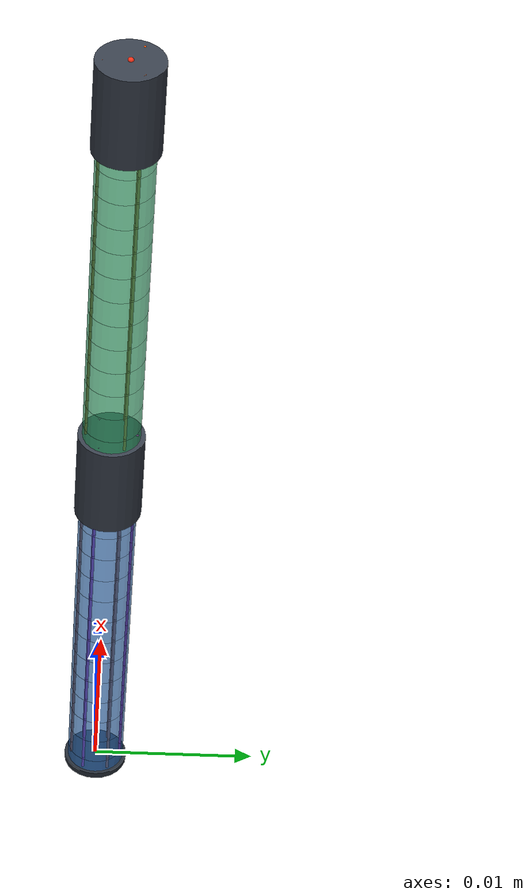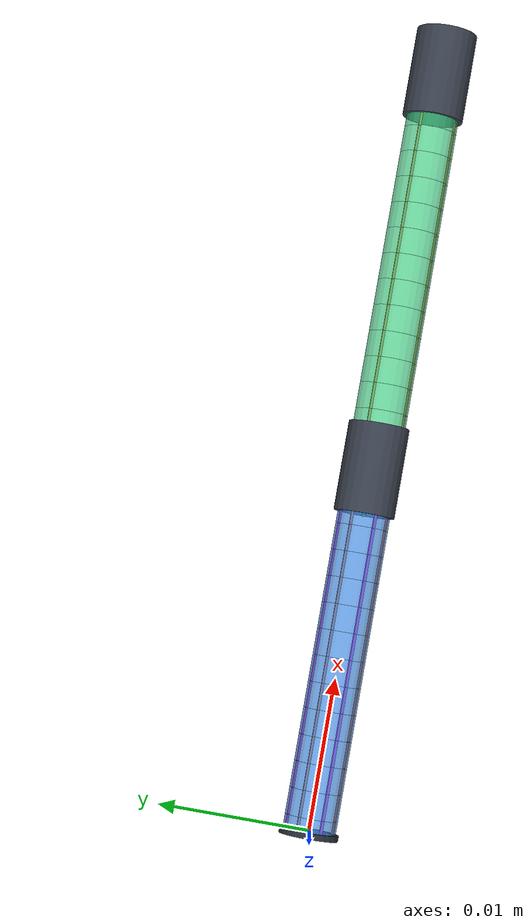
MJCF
<?xml version='1.0' encoding='utf-8'?>
<mujoco model="two_segment_tendon_driven_continuum">
  <compiler angle="radian" autolimits="true" boundmass="1e-12" />
  <option timestep="0.0002" integrator="implicitfast" gravity="0 0 0" cone="pyramidal" impratio="100" iterations="80" tolerance="1e-7" />
  <visual>
    <headlight diffuse="0.8 0.8 0.8" ambient="0.25 0.25 0.25" />
    <global azimuth="130" elevation="-20" />
  </visual>
  <asset>
    <texture type="skybox" builtin="gradient" rgb1="0.9 0.95 1" rgb2="0.25 0.35 0.5" width="256" height="256" />
  </asset>
  <worldbody>
    <light pos="0 0.04 0.08" dir="0 -0.4 -1" diffuse="0.9 0.9 0.9" />
    <body name="tdcr_base" pos="0 0 0">
      <site name="base_frame" pos="0 0 0" size="0.00012" rgba="0 0.8 1 1" />
      <site name="measurement_kp_0" pos="0 0 0" size="0.00022" rgba="1 0.85 0.05 0.9" group="5" />
      <geom name="base_disk" type="cylinder" pos="-0.0002 0 0" euler="0 1.57079632679 0" size="0.00196 0.0002" mass="0" rgba="0.15 0.18 0.22 1" contype="0" conaffinity="0" />
      <site name="wire_1_base" pos="0 0.00154 0" size="7.5e-05" rgba="1.0 0.0 0.9 1" group="3" />
      <site name="wire_2_base" pos="0 -0.00077 0.00133367912183" size="7.5e-05" rgba="1.0 0.0 0.9 1" group="3" />
      <site name="wire_3_base" pos="0 -0.00077 -0.00133367912183" size="7.5e-05" rgba="1.0 0.0 0.9 1" group="3" />
      <site name="wire_4_base" pos="0 0.00077 0.00133367912183" size="7.5e-05" rgba="0.95 0.35 0.05 1" group="3" />
      <site name="wire_5_base" pos="0 -0.00154 1.88595607069e-19" size="7.5e-05" rgba="0.95 0.35 0.05 1" group="3" />
      <site name="wire_6_base" pos="0 0.00077 -0.00133367912183" size="7.5e-05" rgba="0.95 0.35 0.05 1" group="3" />
      <geom name="section_1_element_0" type="cylinder" fromto="0 0 0 0.000875 0 0" size="0.00175" mass="2.43349239569e-05" rgba="0.25 0.55 0.9 0.72" contype="1" conaffinity="0" margin="0.00005" condim="1" friction="0.3 0.001 0.0001" solref="0.005 2" solimp="0.9 0.95 0.001" />
      <body name="section_1_joint_body_0" pos="0.000875 0 0">
        <joint name="section_1_joint_0_y" axis="0 1 0" type="hinge" pos="0 0 0" limited="true" range="-0.35 0.35" stiffness="0.058548571988" damping="0.006" armature="1e-10" />
        <joint name="section_1_joint_0_z" axis="0 0 1" type="hinge" pos="0 0 0" limited="true" range="-0.35 0.35" stiffness="0.058548571988" damping="0.006" armature="1e-10" />
        <geom name="section_1_element_1" type="cylinder" fromto="0 0 0 0.00175 0 0" size="0.00175" mass="4.86698479137e-05" rgba="0.25 0.55 0.9 0.72" contype="1" conaffinity="0" margin="0.00005" condim="1" friction="0.3 0.001 0.0001" solref="0.005 2" solimp="0.9 0.95 0.001" />
        <site name="wire_1_section_1_joint_0" pos="0 0.00154 0" size="7.5e-05" rgba="1.0 0.0 0.9 1" group="3" />
        <site name="wire_2_section_1_joint_0" pos="0 -0.00077 0.00133367912183" size="7.5e-05" rgba="1.0 0.0 0.9 1" group="3" />
        <site name="wire_3_section_1_joint_0" pos="0 -0.00077 -0.00133367912183" size="7.5e-05" rgba="1.0 0.0 0.9 1" group="3" />
        <site name="wire_4_section_1_joint_0" pos="0 0.00077 0.00133367912183" size="7.5e-05" rgba="0.95 0.35 0.05 1" group="3" />
        <site name="wire_5_section_1_joint_0" pos="0 -0.00154 1.88595607069e-19" size="7.5e-05" rgba="0.95 0.35 0.05 1" group="3" />
        <site name="wire_6_section_1_joint_0" pos="0 0.00077 -0.00133367912183" size="7.5e-05" rgba="0.95 0.35 0.05 1" group="3" />
        <body name="section_1_joint_body_1" pos="0.00175 0 0">
          <joint name="section_1_joint_1_y" axis="0 1 0" type="hinge" pos="0 0 0" limited="true" range="-0.35 0.35" stiffness="0.058548571988" damping="0.006" armature="1e-10" />
          <joint name="section_1_joint_1_z" axis="0 0 1" type="hinge" pos="0 0 0" limited="true" range="-0.35 0.35" stiffness="0.058548571988" damping="0.006" armature="1e-10" />
          <geom name="section_1_element_2" type="cylinder" fromto="0 0 0 0.00175 0 0" size="0.00175" mass="4.86698479137e-05" rgba="0.25 0.55 0.9 0.72" contype="1" conaffinity="0" margin="0.00005" condim="1" friction="0.3 0.001 0.0001" solref="0.005 2" solimp="0.9 0.95 0.001" />
          <site name="wire_1_section_1_joint_1" pos="0 0.00154 0" size="7.5e-05" rgba="1.0 0.0 0.9 1" group="3" />
          <site name="wire_2_section_1_joint_1" pos="0 -0.00077 0.00133367912183" size="7.5e-05" rgba="1.0 0.0 0.9 1" group="3" />
          <site name="wire_3_section_1_joint_1" pos="0 -0.00077 -0.00133367912183" size="7.5e-05" rgba="1.0 0.0 0.9 1" group="3" />
          <site name="wire_4_section_1_joint_1" pos="0 0.00077 0.00133367912183" size="7.5e-05" rgba="0.95 0.35 0.05 1" group="3" />
          <site name="wire_5_section_1_joint_1" pos="0 -0.00154 1.88595607069e-19" size="7.5e-05" rgba="0.95 0.35 0.05 1" group="3" />
          <site name="wire_6_section_1_joint_1" pos="0 0.00077 -0.00133367912183" size="7.5e-05" rgba="0.95 0.35 0.05 1" group="3" />
          <body name="section_1_joint_body_2" pos="0.00175 0 0">
            <joint name="section_1_joint_2_y" axis="0 1 0" type="hinge" pos="0 0 0" limited="true" range="-0.35 0.35" stiffness="0.058548571988" damping="0.006" armature="1e-10" />
            <joint name="section_1_joint_2_z" axis="0 0 1" type="hinge" pos="0 0 0" limited="true" range="-0.35 0.35" stiffness="0.058548571988" damping="0.006" armature="1e-10" />
            <geom name="section_1_element_3" type="cylinder" fromto="0 0 0 0.00175 0 0" size="0.00175" mass="4.86698479137e-05" rgba="0.25 0.55 0.9 0.72" contype="1" conaffinity="0" margin="0.00005" condim="1" friction="0.3 0.001 0.0001" solref="0.005 2" solimp="0.9 0.95 0.001" />
            <site name="wire_1_section_1_joint_2" pos="0 0.00154 0" size="7.5e-05" rgba="1.0 0.0 0.9 1" group="3" />
            <site name="wire_2_section_1_joint_2" pos="0 -0.00077 0.00133367912183" size="7.5e-05" rgba="1.0 0.0 0.9 1" group="3" />
            <site name="wire_3_section_1_joint_2" pos="0 -0.00077 -0.00133367912183" size="7.5e-05" rgba="1.0 0.0 0.9 1" group="3" />
            <site name="wire_4_section_1_joint_2" pos="0 0.00077 0.00133367912183" size="7.5e-05" rgba="0.95 0.35 0.05 1" group="3" />
            <site name="wire_5_section_1_joint_2" pos="0 -0.00154 1.88595607069e-19" size="7.5e-05" rgba="0.95 0.35 0.05 1" group="3" />
            <site name="wire_6_section_1_joint_2" pos="0 0.00077 -0.00133367912183" size="7.5e-05" rgba="0.95 0.35 0.05 1" group="3" />
            <body name="section_1_joint_body_3" pos="0.00175 0 0">
              <joint name="section_1_joint_3_y" axis="0 1 0" type="hinge" pos="0 0 0" limited="true" range="-0.35 0.35" stiffness="0.058548571988" damping="0.006" armature="1e-10" />
              <joint name="section_1_joint_3_z" axis="0 0 1" type="hinge" pos="0 0 0" limited="true" range="-0.35 0.35" stiffness="0.058548571988" damping="0.006" armature="1e-10" />
              <geom name="section_1_element_4" type="cylinder" fromto="0 0 0 0.00175 0 0" size="0.00175" mass="4.86698479137e-05" rgba="0.25 0.55 0.9 0.72" contype="1" conaffinity="0" margin="0.00005" condim="1" friction="0.3 0.001 0.0001" solref="0.005 2" solimp="0.9 0.95 0.001" />
              <site name="wire_1_section_1_joint_3" pos="0 0.00154 0" size="7.5e-05" rgba="1.0 0.0 0.9 1" group="3" />
              <site name="wire_2_section_1_joint_3" pos="0 -0.00077 0.00133367912183" size="7.5e-05" rgba="1.0 0.0 0.9 1" group="3" />
              <site name="wire_3_section_1_joint_3" pos="0 -0.00077 -0.00133367912183" size="7.5e-05" rgba="1.0 0.0 0.9 1" group="3" />
              <site name="wire_4_section_1_joint_3" pos="0 0.00077 0.00133367912183" size="7.5e-05" rgba="0.95 0.35 0.05 1" group="3" />
              <site name="wire_5_section_1_joint_3" pos="0 -0.00154 1.88595607069e-19" size="7.5e-05" rgba="0.95 0.35 0.05 1" group="3" />
              <site name="wire_6_section_1_joint_3" pos="0 0.00077 -0.00133367912183" size="7.5e-05" rgba="0.95 0.35 0.05 1" group="3" />
              <body name="section_1_joint_body_4" pos="0.00175 0 0">
                <joint name="section_1_joint_4_y" axis="0 1 0" type="hinge" pos="0 0 0" limited="true" range="-0.35 0.35" stiffness="0.058548571988" damping="0.006" armature="1e-10" />
                <joint name="section_1_joint_4_z" axis="0 0 1" type="hinge" pos="0 0 0" limited="true" range="-0.35 0.35" stiffness="0.058548571988" damping="0.006" armature="1e-10" />
                <geom name="section_1_element_5" type="cylinder" fromto="0 0 0 0.00175 0 0" size="0.00175" mass="4.86698479137e-05" rgba="0.25 0.55 0.9 0.72" contype="1" conaffinity="0" margin="0.00005" condim="1" friction="0.3 0.001 0.0001" solref="0.005 2" solimp="0.9 0.95 0.001" />
                <site name="wire_1_section_1_joint_4" pos="0 0.00154 0" size="7.5e-05" rgba="1.0 0.0 0.9 1" group="3" />
                <site name="wire_2_section_1_joint_4" pos="0 -0.00077 0.00133367912183" size="7.5e-05" rgba="1.0 0.0 0.9 1" group="3" />
                <site name="wire_3_section_1_joint_4" pos="0 -0.00077 -0.00133367912183" size="7.5e-05" rgba="1.0 0.0 0.9 1" group="3" />
                <site name="wire_4_section_1_joint_4" pos="0 0.00077 0.00133367912183" size="7.5e-05" rgba="0.95 0.35 0.05 1" group="3" />
                <site name="wire_5_section_1_joint_4" pos="0 -0.00154 1.88595607069e-19" size="7.5e-05" rgba="0.95 0.35 0.05 1" group="3" />
                <site name="wire_6_section_1_joint_4" pos="0 0.00077 -0.00133367912183" size="7.5e-05" rgba="0.95 0.35 0.05 1" group="3" />
                <body name="section_1_joint_body_5" pos="0.00175 0 0">
                  <joint name="section_1_joint_5_y" axis="0 1 0" type="hinge" pos="0 0 0" limited="true" range="-0.35 0.35" stiffness="0.058548571988" damping="0.006" armature="1e-10" />
                  <joint name="section_1_joint_5_z" axis="0 0 1" type="hinge" pos="0 0 0" limited="true" range="-0.35 0.35" stiffness="0.058548571988" damping="0.006" armature="1e-10" />
                  <geom name="section_1_element_6" type="cylinder" fromto="0 0 0 0.00175 0 0" size="0.00175" mass="4.86698479137e-05" rgba="0.25 0.55 0.9 0.72" contype="1" conaffinity="0" margin="0.00005" condim="1" friction="0.3 0.001 0.0001" solref="0.005 2" solimp="0.9 0.95 0.001" />
                  <site name="wire_1_section_1_joint_5" pos="0 0.00154 0" size="7.5e-05" rgba="1.0 0.0 0.9 1" group="3" />
                  <site name="wire_2_section_1_joint_5" pos="0 -0.00077 0.00133367912183" size="7.5e-05" rgba="1.0 0.0 0.9 1" group="3" />
                  <site name="wire_3_section_1_joint_5" pos="0 -0.00077 -0.00133367912183" size="7.5e-05" rgba="1.0 0.0 0.9 1" group="3" />
                  <site name="wire_4_section_1_joint_5" pos="0 0.00077 0.00133367912183" size="7.5e-05" rgba="0.95 0.35 0.05 1" group="3" />
                  <site name="wire_5_section_1_joint_5" pos="0 -0.00154 1.88595607069e-19" size="7.5e-05" rgba="0.95 0.35 0.05 1" group="3" />
                  <site name="wire_6_section_1_joint_5" pos="0 0.00077 -0.00133367912183" size="7.5e-05" rgba="0.95 0.35 0.05 1" group="3" />
                  <body name="section_1_joint_body_6" pos="0.00175 0 0">
                    <joint name="section_1_joint_6_y" axis="0 1 0" type="hinge" pos="0 0 0" limited="true" range="-0.35 0.35" stiffness="0.058548571988" damping="0.006" armature="1e-10" />
                    <joint name="section_1_joint_6_z" axis="0 0 1" type="hinge" pos="0 0 0" limited="true" range="-0.35 0.35" stiffness="0.058548571988" damping="0.006" armature="1e-10" />
                    <geom name="section_1_element_7" type="cylinder" fromto="0 0 0 0.00175 0 0" size="0.00175" mass="4.86698479137e-05" rgba="0.25 0.55 0.9 0.72" contype="1" conaffinity="0" margin="0.00005" condim="1" friction="0.3 0.001 0.0001" solref="0.005 2" solimp="0.9 0.95 0.001" />
                    <site name="wire_1_section_1_joint_6" pos="0 0.00154 0" size="7.5e-05" rgba="1.0 0.0 0.9 1" group="3" />
                    <site name="wire_2_section_1_joint_6" pos="0 -0.00077 0.00133367912183" size="7.5e-05" rgba="1.0 0.0 0.9 1" group="3" />
                    <site name="wire_3_section_1_joint_6" pos="0 -0.00077 -0.00133367912183" size="7.5e-05" rgba="1.0 0.0 0.9 1" group="3" />
                    <site name="wire_4_section_1_joint_6" pos="0 0.00077 0.00133367912183" size="7.5e-05" rgba="0.95 0.35 0.05 1" group="3" />
                    <site name="wire_5_section_1_joint_6" pos="0 -0.00154 1.88595607069e-19" size="7.5e-05" rgba="0.95 0.35 0.05 1" group="3" />
                    <site name="wire_6_section_1_joint_6" pos="0 0.00077 -0.00133367912183" size="7.5e-05" rgba="0.95 0.35 0.05 1" group="3" />
                    <body name="section_1_joint_body_7" pos="0.00175 0 0">
                      <joint name="section_1_joint_7_y" axis="0 1 0" type="hinge" pos="0 0 0" limited="true" range="-0.35 0.35" stiffness="0.058548571988" damping="0.006" armature="1e-10" />
                      <joint name="section_1_joint_7_z" axis="0 0 1" type="hinge" pos="0 0 0" limited="true" range="-0.35 0.35" stiffness="0.058548571988" damping="0.006" armature="1e-10" />
                      <geom name="section_1_element_8" type="cylinder" fromto="0 0 0 0.00175 0 0" size="0.00175" mass="4.86698479137e-05" rgba="0.25 0.55 0.9 0.72" contype="1" conaffinity="0" margin="0.00005" condim="1" friction="0.3 0.001 0.0001" solref="0.005 2" solimp="0.9 0.95 0.001" />
                      <site name="wire_1_section_1_joint_7" pos="0 0.00154 0" size="7.5e-05" rgba="1.0 0.0 0.9 1" group="3" />
                      <site name="wire_2_section_1_joint_7" pos="0 -0.00077 0.00133367912183" size="7.5e-05" rgba="1.0 0.0 0.9 1" group="3" />
                      <site name="wire_3_section_1_joint_7" pos="0 -0.00077 -0.00133367912183" size="7.5e-05" rgba="1.0 0.0 0.9 1" group="3" />
                      <site name="wire_4_section_1_joint_7" pos="0 0.00077 0.00133367912183" size="7.5e-05" rgba="0.95 0.35 0.05 1" group="3" />
                      <site name="wire_5_section_1_joint_7" pos="0 -0.00154 1.88595607069e-19" size="7.5e-05" rgba="0.95 0.35 0.05 1" group="3" />
                      <site name="wire_6_section_1_joint_7" pos="0 0.00077 -0.00133367912183" size="7.5e-05" rgba="0.95 0.35 0.05 1" group="3" />
                      <body name="section_1_joint_body_8" pos="0.00175 0 0">
                        <joint name="section_1_joint_8_y" axis="0 1 0" type="hinge" pos="0 0 0" limited="true" range="-0.35 0.35" stiffness="0.058548571988" damping="0.006" armature="1e-10" />
                        <joint name="section_1_joint_8_z" axis="0 0 1" type="hinge" pos="0 0 0" limited="true" range="-0.35 0.35" stiffness="0.058548571988" damping="0.006" armature="1e-10" />
                        <geom name="section_1_element_9" type="cylinder" fromto="0 0 0 0.00175 0 0" size="0.00175" mass="4.86698479137e-05" rgba="0.25 0.55 0.9 0.72" contype="1" conaffinity="0" margin="0.00005" condim="1" friction="0.3 0.001 0.0001" solref="0.005 2" solimp="0.9 0.95 0.001" />
                        <site name="wire_1_section_1_joint_8" pos="0 0.00154 0" size="7.5e-05" rgba="1.0 0.0 0.9 1" group="3" />
                        <site name="wire_2_section_1_joint_8" pos="0 -0.00077 0.00133367912183" size="7.5e-05" rgba="1.0 0.0 0.9 1" group="3" />
                        <site name="wire_3_section_1_joint_8" pos="0 -0.00077 -0.00133367912183" size="7.5e-05" rgba="1.0 0.0 0.9 1" group="3" />
                        <site name="wire_4_section_1_joint_8" pos="0 0.00077 0.00133367912183" size="7.5e-05" rgba="0.95 0.35 0.05 1" group="3" />
                        <site name="wire_5_section_1_joint_8" pos="0 -0.00154 1.88595607069e-19" size="7.5e-05" rgba="0.95 0.35 0.05 1" group="3" />
                        <site name="wire_6_section_1_joint_8" pos="0 0.00077 -0.00133367912183" size="7.5e-05" rgba="0.95 0.35 0.05 1" group="3" />
                        <body name="section_1_joint_body_9" pos="0.00175 0 0">
                          <joint name="section_1_joint_9_y" axis="0 1 0" type="hinge" pos="0 0 0" limited="true" range="-0.35 0.35" stiffness="0.058548571988" damping="0.006" armature="1e-10" />
                          <joint name="section_1_joint_9_z" axis="0 0 1" type="hinge" pos="0 0 0" limited="true" range="-0.35 0.35" stiffness="0.058548571988" damping="0.006" armature="1e-10" />
                          <geom name="section_1_element_10" type="cylinder" fromto="0 0 0 0.00175 0 0" size="0.00175" mass="4.86698479137e-05" rgba="0.25 0.55 0.9 0.72" contype="1" conaffinity="0" margin="0.00005" condim="1" friction="0.3 0.001 0.0001" solref="0.005 2" solimp="0.9 0.95 0.001" />
                          <site name="wire_1_section_1_joint_9" pos="0 0.00154 0" size="7.5e-05" rgba="1.0 0.0 0.9 1" group="3" />
                          <site name="wire_2_section_1_joint_9" pos="0 -0.00077 0.00133367912183" size="7.5e-05" rgba="1.0 0.0 0.9 1" group="3" />
                          <site name="wire_3_section_1_joint_9" pos="0 -0.00077 -0.00133367912183" size="7.5e-05" rgba="1.0 0.0 0.9 1" group="3" />
                          <site name="wire_4_section_1_joint_9" pos="0 0.00077 0.00133367912183" size="7.5e-05" rgba="0.95 0.35 0.05 1" group="3" />
                          <site name="wire_5_section_1_joint_9" pos="0 -0.00154 1.88595607069e-19" size="7.5e-05" rgba="0.95 0.35 0.05 1" group="3" />
                          <site name="wire_6_section_1_joint_9" pos="0 0.00077 -0.00133367912183" size="7.5e-05" rgba="0.95 0.35 0.05 1" group="3" />
                          <body name="section_1_joint_body_10" pos="0.00175 0 0">
                            <joint name="section_1_joint_10_y" axis="0 1 0" type="hinge" pos="0 0 0" limited="true" range="-0.35 0.35" stiffness="0.058548571988" damping="0.006" armature="1e-10" />
                            <joint name="section_1_joint_10_z" axis="0 0 1" type="hinge" pos="0 0 0" limited="true" range="-0.35 0.35" stiffness="0.058548571988" damping="0.006" armature="1e-10" />
                            <geom name="section_1_element_11" type="cylinder" fromto="0 0 0 0.00175 0 0" size="0.00175" mass="4.86698479137e-05" rgba="0.25 0.55 0.9 0.72" contype="1" conaffinity="0" margin="0.00005" condim="1" friction="0.3 0.001 0.0001" solref="0.005 2" solimp="0.9 0.95 0.001" />
                            <site name="wire_1_section_1_joint_10" pos="0 0.00154 0" size="7.5e-05" rgba="1.0 0.0 0.9 1" group="3" />
                            <site name="wire_2_section_1_joint_10" pos="0 -0.00077 0.00133367912183" size="7.5e-05" rgba="1.0 0.0 0.9 1" group="3" />
                            <site name="wire_3_section_1_joint_10" pos="0 -0.00077 -0.00133367912183" size="7.5e-05" rgba="1.0 0.0 0.9 1" group="3" />
                            <site name="wire_4_section_1_joint_10" pos="0 0.00077 0.00133367912183" size="7.5e-05" rgba="0.95 0.35 0.05 1" group="3" />
                            <site name="wire_5_section_1_joint_10" pos="0 -0.00154 1.88595607069e-19" size="7.5e-05" rgba="0.95 0.35 0.05 1" group="3" />
                            <site name="wire_6_section_1_joint_10" pos="0 0.00077 -0.00133367912183" size="7.5e-05" rgba="0.95 0.35 0.05 1" group="3" />
                            <body name="section_1_joint_body_11" pos="0.00175 0 0">
                              <joint name="section_1_joint_11_y" axis="0 1 0" type="hinge" pos="0 0 0" limited="true" range="-0.35 0.35" stiffness="0.058548571988" damping="0.006" armature="1e-10" />
                              <joint name="section_1_joint_11_z" axis="0 0 1" type="hinge" pos="0 0 0" limited="true" range="-0.35 0.35" stiffness="0.058548571988" damping="0.006" armature="1e-10" />
                              <geom name="section_1_element_12" type="cylinder" fromto="0 0 0 0.000875 0 0" size="0.00175" mass="2.43349239569e-05" rgba="0.25 0.55 0.9 0.72" contype="1" conaffinity="0" margin="0.00005" condim="1" friction="0.3 0.001 0.0001" solref="0.005 2" solimp="0.9 0.95 0.001" />
                              <site name="wire_1_section_1_joint_11" pos="0 0.00154 0" size="7.5e-05" rgba="1.0 0.0 0.9 1" group="3" />
                              <site name="wire_2_section_1_joint_11" pos="0 -0.00077 0.00133367912183" size="7.5e-05" rgba="1.0 0.0 0.9 1" group="3" />
                              <site name="wire_3_section_1_joint_11" pos="0 -0.00077 -0.00133367912183" size="7.5e-05" rgba="1.0 0.0 0.9 1" group="3" />
                              <site name="wire_4_section_1_joint_11" pos="0 0.00077 0.00133367912183" size="7.5e-05" rgba="0.95 0.35 0.05 1" group="3" />
                              <site name="wire_5_section_1_joint_11" pos="0 -0.00154 1.88595607069e-19" size="7.5e-05" rgba="0.95 0.35 0.05 1" group="3" />
                              <site name="wire_6_section_1_joint_11" pos="0 0.00077 -0.00133367912183" size="7.5e-05" rgba="0.95 0.35 0.05 1" group="3" />
                              <body name="section_interface" pos="0.000875 0 0">
                                <site name="interface_center" pos="0 0 0" size="0.00015" rgba="0 1 0 1" />
                                <site name="measurement_kp_3" pos="0 0 0" size="0.00022" rgba="1 0.85 0.05 0.9" group="5" />
                                <geom name="inter_section_rigid" type="cylinder" fromto="0 0 0 0.006 0 0" size="0.00203" mass="0" rgba="0.22 0.25 0.30 1" contype="0" conaffinity="0" />
                                <geom name="inter_section_rigid_collision" type="capsule" fromto="0 0 0 0.006 0 0" size="0.00175" mass="0" rgba="0.22 0.25 0.30 0" contype="1" conaffinity="0" margin="0.00005" condim="1" friction="0.3 0.001 0.0001" solref="0.005 2" solimp="0.9 0.95 0.001" group="5" />
                                <site name="wire_1_interface_inlet" pos="0 0.00154 0" size="7.5e-05" rgba="1.0 0.0 0.9 1" group="3" />
                                <site name="wire_2_interface_inlet" pos="0 -0.00077 0.00133367912183" size="7.5e-05" rgba="1.0 0.0 0.9 1" group="3" />
                                <site name="wire_3_interface_inlet" pos="0 -0.00077 -0.00133367912183" size="7.5e-05" rgba="1.0 0.0 0.9 1" group="3" />
                                <site name="wire_4_interface_inlet" pos="0 0.00077 0.00133367912183" size="7.5e-05" rgba="0.95 0.35 0.05 1" group="3" />
                                <site name="wire_5_interface_inlet" pos="0 -0.00154 1.88595607069e-19" size="7.5e-05" rgba="0.95 0.35 0.05 1" group="3" />
                                <site name="wire_6_interface_inlet" pos="0 0.00077 -0.00133367912183" size="7.5e-05" rgba="0.95 0.35 0.05 1" group="3" />
                                <site name="wire_1_interface" pos="0.006 0.00154 0" size="7.5e-05" rgba="1.0 0.0 0.9 1" group="3" />
                                <site name="wire_2_interface" pos="0.006 -0.00077 0.00133367912183" size="7.5e-05" rgba="1.0 0.0 0.9 1" group="3" />
                                <site name="wire_3_interface" pos="0.006 -0.00077 -0.00133367912183" size="7.5e-05" rgba="1.0 0.0 0.9 1" group="3" />
                                <site name="wire_4_interface" pos="0.006 0.00077 0.00133367912183" size="7.5e-05" rgba="0.95 0.35 0.05 1" group="3" />
                                <site name="wire_5_interface" pos="0.006 -0.00154 1.88595607069e-19" size="7.5e-05" rgba="0.95 0.35 0.05 1" group="3" />
                                <site name="wire_6_interface" pos="0.006 0.00077 -0.00133367912183" size="7.5e-05" rgba="0.95 0.35 0.05 1" group="3" />
                                <body name="section_2_mount" pos="0.006 0 0">
                                  <geom name="section_2_element_0" type="cylinder" fromto="0 0 0 0.000875 0 0" size="0.00175" mass="2.43349239569e-05" rgba="0.25 0.82 0.52 0.72" contype="1" conaffinity="0" margin="0.00005" condim="1" friction="0.3 0.001 0.0001" solref="0.005 2" solimp="0.9 0.95 0.001" />
                                  <body name="section_2_joint_body_0" pos="0.000875 0 0">
                                    <joint name="section_2_joint_0_y" axis="0 1 0" type="hinge" pos="0 0 0" limited="true" range="-0.35 0.35" stiffness="0.058548571988" damping="0.006" armature="1e-10" />
                                    <joint name="section_2_joint_0_z" axis="0 0 1" type="hinge" pos="0 0 0" limited="true" range="-0.35 0.35" stiffness="0.058548571988" damping="0.006" armature="1e-10" />
                                    <geom name="section_2_element_1" type="cylinder" fromto="0 0 0 0.00175 0 0" size="0.00175" mass="4.86698479137e-05" rgba="0.25 0.82 0.52 0.72" contype="1" conaffinity="0" margin="0.00005" condim="1" friction="0.3 0.001 0.0001" solref="0.005 2" solimp="0.9 0.95 0.001" />
                                    <site name="wire_4_section_2_joint_0" pos="0 0.00077 0.00133367912183" size="7.5e-05" rgba="0.95 0.35 0.05 1" group="3" />
                                    <site name="wire_5_section_2_joint_0" pos="0 -0.00154 1.88595607069e-19" size="7.5e-05" rgba="0.95 0.35 0.05 1" group="3" />
                                    <site name="wire_6_section_2_joint_0" pos="0 0.00077 -0.00133367912183" size="7.5e-05" rgba="0.95 0.35 0.05 1" group="3" />
                                    <body name="section_2_joint_body_1" pos="0.00175 0 0">
                                      <joint name="section_2_joint_1_y" axis="0 1 0" type="hinge" pos="0 0 0" limited="true" range="-0.35 0.35" stiffness="0.058548571988" damping="0.006" armature="1e-10" />
                                      <joint name="section_2_joint_1_z" axis="0 0 1" type="hinge" pos="0 0 0" limited="true" range="-0.35 0.35" stiffness="0.058548571988" damping="0.006" armature="1e-10" />
                                      <geom name="section_2_element_2" type="cylinder" fromto="0 0 0 0.00175 0 0" size="0.00175" mass="4.86698479137e-05" rgba="0.25 0.82 0.52 0.72" contype="1" conaffinity="0" margin="0.00005" condim="1" friction="0.3 0.001 0.0001" solref="0.005 2" solimp="0.9 0.95 0.001" />
                                      <site name="wire_4_section_2_joint_1" pos="0 0.00077 0.00133367912183" size="7.5e-05" rgba="0.95 0.35 0.05 1" group="3" />
                                      <site name="wire_5_section_2_joint_1" pos="0 -0.00154 1.88595607069e-19" size="7.5e-05" rgba="0.95 0.35 0.05 1" group="3" />
                                      <site name="wire_6_section_2_joint_1" pos="0 0.00077 -0.00133367912183" size="7.5e-05" rgba="0.95 0.35 0.05 1" group="3" />
                                      <body name="section_2_joint_body_2" pos="0.00175 0 0">
                                        <joint name="section_2_joint_2_y" axis="0 1 0" type="hinge" pos="0 0 0" limited="true" range="-0.35 0.35" stiffness="0.058548571988" damping="0.006" armature="1e-10" />
                                        <joint name="section_2_joint_2_z" axis="0 0 1" type="hinge" pos="0 0 0" limited="true" range="-0.35 0.35" stiffness="0.058548571988" damping="0.006" armature="1e-10" />
                                        <geom name="section_2_element_3" type="cylinder" fromto="0 0 0 0.00175 0 0" size="0.00175" mass="4.86698479137e-05" rgba="0.25 0.82 0.52 0.72" contype="1" conaffinity="0" margin="0.00005" condim="1" friction="0.3 0.001 0.0001" solref="0.005 2" solimp="0.9 0.95 0.001" />
                                        <site name="wire_4_section_2_joint_2" pos="0 0.00077 0.00133367912183" size="7.5e-05" rgba="0.95 0.35 0.05 1" group="3" />
                                        <site name="wire_5_section_2_joint_2" pos="0 -0.00154 1.88595607069e-19" size="7.5e-05" rgba="0.95 0.35 0.05 1" group="3" />
                                        <site name="wire_6_section_2_joint_2" pos="0 0.00077 -0.00133367912183" size="7.5e-05" rgba="0.95 0.35 0.05 1" group="3" />
                                        <body name="section_2_joint_body_3" pos="0.00175 0 0">
                                          <joint name="section_2_joint_3_y" axis="0 1 0" type="hinge" pos="0 0 0" limited="true" range="-0.35 0.35" stiffness="0.058548571988" damping="0.006" armature="1e-10" />
                                          <joint name="section_2_joint_3_z" axis="0 0 1" type="hinge" pos="0 0 0" limited="true" range="-0.35 0.35" stiffness="0.058548571988" damping="0.006" armature="1e-10" />
                                          <geom name="section_2_element_4" type="cylinder" fromto="0 0 0 0.00175 0 0" size="0.00175" mass="4.86698479137e-05" rgba="0.25 0.82 0.52 0.72" contype="1" conaffinity="0" margin="0.00005" condim="1" friction="0.3 0.001 0.0001" solref="0.005 2" solimp="0.9 0.95 0.001" />
                                          <site name="wire_4_section_2_joint_3" pos="0 0.00077 0.00133367912183" size="7.5e-05" rgba="0.95 0.35 0.05 1" group="3" />
                                          <site name="wire_5_section_2_joint_3" pos="0 -0.00154 1.88595607069e-19" size="7.5e-05" rgba="0.95 0.35 0.05 1" group="3" />
                                          <site name="wire_6_section_2_joint_3" pos="0 0.00077 -0.00133367912183" size="7.5e-05" rgba="0.95 0.35 0.05 1" group="3" />
                                          <body name="section_2_joint_body_4" pos="0.00175 0 0">
                                            <joint name="section_2_joint_4_y" axis="0 1 0" type="hinge" pos="0 0 0" limited="true" range="-0.35 0.35" stiffness="0.058548571988" damping="0.006" armature="1e-10" />
                                            <joint name="section_2_joint_4_z" axis="0 0 1" type="hinge" pos="0 0 0" limited="true" range="-0.35 0.35" stiffness="0.058548571988" damping="0.006" armature="1e-10" />
                                            <geom name="section_2_element_5" type="cylinder" fromto="0 0 0 0.00175 0 0" size="0.00175" mass="4.86698479137e-05" rgba="0.25 0.82 0.52 0.72" contype="1" conaffinity="0" margin="0.00005" condim="1" friction="0.3 0.001 0.0001" solref="0.005 2" solimp="0.9 0.95 0.001" />
                                            <site name="wire_4_section_2_joint_4" pos="0 0.00077 0.00133367912183" size="7.5e-05" rgba="0.95 0.35 0.05 1" group="3" />
                                            <site name="wire_5_section_2_joint_4" pos="0 -0.00154 1.88595607069e-19" size="7.5e-05" rgba="0.95 0.35 0.05 1" group="3" />
                                            <site name="wire_6_section_2_joint_4" pos="0 0.00077 -0.00133367912183" size="7.5e-05" rgba="0.95 0.35 0.05 1" group="3" />
                                            <body name="section_2_joint_body_5" pos="0.00175 0 0">
                                              <joint name="section_2_joint_5_y" axis="0 1 0" type="hinge" pos="0 0 0" limited="true" range="-0.35 0.35" stiffness="0.058548571988" damping="0.006" armature="1e-10" />
                                              <joint name="section_2_joint_5_z" axis="0 0 1" type="hinge" pos="0 0 0" limited="true" range="-0.35 0.35" stiffness="0.058548571988" damping="0.006" armature="1e-10" />
                                              <geom name="section_2_element_6" type="cylinder" fromto="0 0 0 0.00175 0 0" size="0.00175" mass="4.86698479137e-05" rgba="0.25 0.82 0.52 0.72" contype="1" conaffinity="0" margin="0.00005" condim="1" friction="0.3 0.001 0.0001" solref="0.005 2" solimp="0.9 0.95 0.001" />
                                              <site name="wire_4_section_2_joint_5" pos="0 0.00077 0.00133367912183" size="7.5e-05" rgba="0.95 0.35 0.05 1" group="3" />
                                              <site name="wire_5_section_2_joint_5" pos="0 -0.00154 1.88595607069e-19" size="7.5e-05" rgba="0.95 0.35 0.05 1" group="3" />
                                              <site name="wire_6_section_2_joint_5" pos="0 0.00077 -0.00133367912183" size="7.5e-05" rgba="0.95 0.35 0.05 1" group="3" />
                                              <body name="section_2_joint_body_6" pos="0.00175 0 0">
                                                <joint name="section_2_joint_6_y" axis="0 1 0" type="hinge" pos="0 0 0" limited="true" range="-0.35 0.35" stiffness="0.058548571988" damping="0.006" armature="1e-10" />
                                                <joint name="section_2_joint_6_z" axis="0 0 1" type="hinge" pos="0 0 0" limited="true" range="-0.35 0.35" stiffness="0.058548571988" damping="0.006" armature="1e-10" />
                                                <geom name="section_2_element_7" type="cylinder" fromto="0 0 0 0.00175 0 0" size="0.00175" mass="4.86698479137e-05" rgba="0.25 0.82 0.52 0.72" contype="1" conaffinity="0" margin="0.00005" condim="1" friction="0.3 0.001 0.0001" solref="0.005 2" solimp="0.9 0.95 0.001" />
                                                <site name="wire_4_section_2_joint_6" pos="0 0.00077 0.00133367912183" size="7.5e-05" rgba="0.95 0.35 0.05 1" group="3" />
                                                <site name="wire_5_section_2_joint_6" pos="0 -0.00154 1.88595607069e-19" size="7.5e-05" rgba="0.95 0.35 0.05 1" group="3" />
                                                <site name="wire_6_section_2_joint_6" pos="0 0.00077 -0.00133367912183" size="7.5e-05" rgba="0.95 0.35 0.05 1" group="3" />
                                                <body name="section_2_joint_body_7" pos="0.00175 0 0">
                                                  <joint name="section_2_joint_7_y" axis="0 1 0" type="hinge" pos="0 0 0" limited="true" range="-0.35 0.35" stiffness="0.058548571988" damping="0.006" armature="1e-10" />
                                                  <joint name="section_2_joint_7_z" axis="0 0 1" type="hinge" pos="0 0 0" limited="true" range="-0.35 0.35" stiffness="0.058548571988" damping="0.006" armature="1e-10" />
                                                  <geom name="section_2_element_8" type="cylinder" fromto="0 0 0 0.00175 0 0" size="0.00175" mass="4.86698479137e-05" rgba="0.25 0.82 0.52 0.72" contype="1" conaffinity="0" margin="0.00005" condim="1" friction="0.3 0.001 0.0001" solref="0.005 2" solimp="0.9 0.95 0.001" />
                                                  <site name="wire_4_section_2_joint_7" pos="0 0.00077 0.00133367912183" size="7.5e-05" rgba="0.95 0.35 0.05 1" group="3" />
                                                  <site name="wire_5_section_2_joint_7" pos="0 -0.00154 1.88595607069e-19" size="7.5e-05" rgba="0.95 0.35 0.05 1" group="3" />
                                                  <site name="wire_6_section_2_joint_7" pos="0 0.00077 -0.00133367912183" size="7.5e-05" rgba="0.95 0.35 0.05 1" group="3" />
                                                  <body name="section_2_joint_body_8" pos="0.00175 0 0">
                                                    <joint name="section_2_joint_8_y" axis="0 1 0" type="hinge" pos="0 0 0" limited="true" range="-0.35 0.35" stiffness="0.058548571988" damping="0.006" armature="1e-10" />
                                                    <joint name="section_2_joint_8_z" axis="0 0 1" type="hinge" pos="0 0 0" limited="true" range="-0.35 0.35" stiffness="0.058548571988" damping="0.006" armature="1e-10" />
                                                    <geom name="section_2_element_9" type="cylinder" fromto="0 0 0 0.00175 0 0" size="0.00175" mass="4.86698479137e-05" rgba="0.25 0.82 0.52 0.72" contype="1" conaffinity="0" margin="0.00005" condim="1" friction="0.3 0.001 0.0001" solref="0.005 2" solimp="0.9 0.95 0.001" />
                                                    <site name="wire_4_section_2_joint_8" pos="0 0.00077 0.00133367912183" size="7.5e-05" rgba="0.95 0.35 0.05 1" group="3" />
                                                    <site name="wire_5_section_2_joint_8" pos="0 -0.00154 1.88595607069e-19" size="7.5e-05" rgba="0.95 0.35 0.05 1" group="3" />
                                                    <site name="wire_6_section_2_joint_8" pos="0 0.00077 -0.00133367912183" size="7.5e-05" rgba="0.95 0.35 0.05 1" group="3" />
                                                    <body name="section_2_joint_body_9" pos="0.00175 0 0">
                                                      <joint name="section_2_joint_9_y" axis="0 1 0" type="hinge" pos="0 0 0" limited="true" range="-0.35 0.35" stiffness="0.058548571988" damping="0.006" armature="1e-10" />
                                                      <joint name="section_2_joint_9_z" axis="0 0 1" type="hinge" pos="0 0 0" limited="true" range="-0.35 0.35" stiffness="0.058548571988" damping="0.006" armature="1e-10" />
                                                      <geom name="section_2_element_10" type="cylinder" fromto="0 0 0 0.00175 0 0" size="0.00175" mass="4.86698479137e-05" rgba="0.25 0.82 0.52 0.72" contype="1" conaffinity="0" margin="0.00005" condim="1" friction="0.3 0.001 0.0001" solref="0.005 2" solimp="0.9 0.95 0.001" />
                                                      <site name="wire_4_section_2_joint_9" pos="0 0.00077 0.00133367912183" size="7.5e-05" rgba="0.95 0.35 0.05 1" group="3" />
                                                      <site name="wire_5_section_2_joint_9" pos="0 -0.00154 1.88595607069e-19" size="7.5e-05" rgba="0.95 0.35 0.05 1" group="3" />
                                                      <site name="wire_6_section_2_joint_9" pos="0 0.00077 -0.00133367912183" size="7.5e-05" rgba="0.95 0.35 0.05 1" group="3" />
                                                      <body name="section_2_joint_body_10" pos="0.00175 0 0">
                                                        <joint name="section_2_joint_10_y" axis="0 1 0" type="hinge" pos="0 0 0" limited="true" range="-0.35 0.35" stiffness="0.058548571988" damping="0.006" armature="1e-10" />
                                                        <joint name="section_2_joint_10_z" axis="0 0 1" type="hinge" pos="0 0 0" limited="true" range="-0.35 0.35" stiffness="0.058548571988" damping="0.006" armature="1e-10" />
                                                        <geom name="section_2_element_11" type="cylinder" fromto="0 0 0 0.00175 0 0" size="0.00175" mass="4.86698479137e-05" rgba="0.25 0.82 0.52 0.72" contype="1" conaffinity="0" margin="0.00005" condim="1" friction="0.3 0.001 0.0001" solref="0.005 2" solimp="0.9 0.95 0.001" />
                                                        <site name="wire_4_section_2_joint_10" pos="0 0.00077 0.00133367912183" size="7.5e-05" rgba="0.95 0.35 0.05 1" group="3" />
                                                        <site name="wire_5_section_2_joint_10" pos="0 -0.00154 1.88595607069e-19" size="7.5e-05" rgba="0.95 0.35 0.05 1" group="3" />
                                                        <site name="wire_6_section_2_joint_10" pos="0 0.00077 -0.00133367912183" size="7.5e-05" rgba="0.95 0.35 0.05 1" group="3" />
                                                        <body name="section_2_joint_body_11" pos="0.00175 0 0">
                                                          <joint name="section_2_joint_11_y" axis="0 1 0" type="hinge" pos="0 0 0" limited="true" range="-0.35 0.35" stiffness="0.058548571988" damping="0.006" armature="1e-10" />
                                                          <joint name="section_2_joint_11_z" axis="0 0 1" type="hinge" pos="0 0 0" limited="true" range="-0.35 0.35" stiffness="0.058548571988" damping="0.006" armature="1e-10" />
                                                          <geom name="section_2_element_12" type="cylinder" fromto="0 0 0 0.000875 0 0" size="0.00175" mass="2.43349239569e-05" rgba="0.25 0.82 0.52 0.72" contype="1" conaffinity="0" margin="0.00005" condim="1" friction="0.3 0.001 0.0001" solref="0.005 2" solimp="0.9 0.95 0.001" />
                                                          <site name="wire_4_section_2_joint_11" pos="0 0.00077 0.00133367912183" size="7.5e-05" rgba="0.95 0.35 0.05 1" group="3" />
                                                          <site name="wire_5_section_2_joint_11" pos="0 -0.00154 1.88595607069e-19" size="7.5e-05" rgba="0.95 0.35 0.05 1" group="3" />
                                                          <site name="wire_6_section_2_joint_11" pos="0 0.00077 -0.00133367912183" size="7.5e-05" rgba="0.95 0.35 0.05 1" group="3" />
                                                          <body name="distal_tip_rigid" pos="0.000875 0 0">
                                                            <geom name="distal_tip_rigid" type="cylinder" fromto="0 0 0 0.006 0 0" size="0.00203" mass="0" rgba="0.22 0.25 0.30 1" contype="0" conaffinity="0" />
                                                            <geom name="distal_tip_rigid_collision" type="capsule" fromto="0 0 0 0.006 0 0" size="0.00175" mass="0" rgba="0.22 0.25 0.30 0" contype="1" conaffinity="0" margin="0.00005" condim="1" friction="0.3 0.001 0.0001" solref="0.005 2" solimp="0.9 0.95 0.001" group="5" />
                                                            <site name="measurement_kp_6" pos="0 0 0" size="0.00022" rgba="1 0.85 0.05 0.9" group="5" />
                                                            <site name="tip_center" pos="0.006 0 0" size="0.00018" rgba="1 0.2 0.1 1" />
                                                            <site name="wire_4_tip" pos="0.006 0.00077 0.00133367912183" size="7.5e-05" rgba="0.95 0.35 0.05 1" group="3" />
                                                            <site name="wire_5_tip" pos="0.006 -0.00154 1.88595607069e-19" size="7.5e-05" rgba="0.95 0.35 0.05 1" group="3" />
                                                            <site name="wire_6_tip" pos="0.006 0.00077 -0.00133367912183" size="7.5e-05" rgba="0.95 0.35 0.05 1" group="3" />
                                                          </body>
                                                        </body>
                                                      </body>
                                                    </body>
                                                  </body>
                                                  <site name="measurement_kp_5" pos="0.000875 0 0" size="0.00022" rgba="1 0.85 0.05 0.9" group="5" />
                                                </body>
                                              </body>
                                            </body>
                                          </body>
                                          <site name="measurement_kp_4" pos="0.000875 0 0" size="0.00022" rgba="1 0.85 0.05 0.9" group="5" />
                                        </body>
                                      </body>
                                    </body>
                                  </body>
                                </body>
                              </body>
                            </body>
                          </body>
                        </body>
                      </body>
                      <site name="measurement_kp_2" pos="0.000875 0 0" size="0.00022" rgba="1 0.85 0.05 0.9" group="5" />
                    </body>
                  </body>
                </body>
              </body>
              <site name="measurement_kp_1" pos="0.000875 0 0" size="0.00022" rgba="1 0.85 0.05 0.9" group="5" />
            </body>
          </body>
        </body>
      </body>
    </body>
  </worldbody>
  <tendon>
    <spatial name="wire_1_tendon" width="8.625e-05" rgba="1.0 0.0 0.9 1">
      <site site="wire_1_base" />
      <site site="wire_1_section_1_joint_0" />
      <site site="wire_1_section_1_joint_1" />
      <site site="wire_1_section_1_joint_2" />
      <site site="wire_1_section_1_joint_3" />
      <site site="wire_1_section_1_joint_4" />
      <site site="wire_1_section_1_joint_5" />
      <site site="wire_1_section_1_joint_6" />
      <site site="wire_1_section_1_joint_7" />
      <site site="wire_1_section_1_joint_8" />
      <site site="wire_1_section_1_joint_9" />
      <site site="wire_1_section_1_joint_10" />
      <site site="wire_1_section_1_joint_11" />
      <site site="wire_1_interface_inlet" />
      <site site="wire_1_interface" />
    </spatial>
    <spatial name="wire_2_tendon" width="8.625e-05" rgba="1.0 0.0 0.9 1">
      <site site="wire_2_base" />
      <site site="wire_2_section_1_joint_0" />
      <site site="wire_2_section_1_joint_1" />
      <site site="wire_2_section_1_joint_2" />
      <site site="wire_2_section_1_joint_3" />
      <site site="wire_2_section_1_joint_4" />
      <site site="wire_2_section_1_joint_5" />
      <site site="wire_2_section_1_joint_6" />
      <site site="wire_2_section_1_joint_7" />
      <site site="wire_2_section_1_joint_8" />
      <site site="wire_2_section_1_joint_9" />
      <site site="wire_2_section_1_joint_10" />
      <site site="wire_2_section_1_joint_11" />
      <site site="wire_2_interface_inlet" />
      <site site="wire_2_interface" />
    </spatial>
    <spatial name="wire_3_tendon" width="8.625e-05" rgba="1.0 0.0 0.9 1">
      <site site="wire_3_base" />
      <site site="wire_3_section_1_joint_0" />
      <site site="wire_3_section_1_joint_1" />
      <site site="wire_3_section_1_joint_2" />
      <site site="wire_3_section_1_joint_3" />
      <site site="wire_3_section_1_joint_4" />
      <site site="wire_3_section_1_joint_5" />
      <site site="wire_3_section_1_joint_6" />
      <site site="wire_3_section_1_joint_7" />
      <site site="wire_3_section_1_joint_8" />
      <site site="wire_3_section_1_joint_9" />
      <site site="wire_3_section_1_joint_10" />
      <site site="wire_3_section_1_joint_11" />
      <site site="wire_3_interface_inlet" />
      <site site="wire_3_interface" />
    </spatial>
    <spatial name="wire_4_tendon" width="8.625e-05" rgba="0.95 0.35 0.05 1">
      <site site="wire_4_base" />
      <site site="wire_4_section_1_joint_0" />
      <site site="wire_4_section_1_joint_1" />
      <site site="wire_4_section_1_joint_2" />
      <site site="wire_4_section_1_joint_3" />
      <site site="wire_4_section_1_joint_4" />
      <site site="wire_4_section_1_joint_5" />
      <site site="wire_4_section_1_joint_6" />
      <site site="wire_4_section_1_joint_7" />
      <site site="wire_4_section_1_joint_8" />
      <site site="wire_4_section_1_joint_9" />
      <site site="wire_4_section_1_joint_10" />
      <site site="wire_4_section_1_joint_11" />
      <site site="wire_4_interface_inlet" />
      <site site="wire_4_interface" />
      <site site="wire_4_section_2_joint_0" />
      <site site="wire_4_section_2_joint_1" />
      <site site="wire_4_section_2_joint_2" />
      <site site="wire_4_section_2_joint_3" />
      <site site="wire_4_section_2_joint_4" />
      <site site="wire_4_section_2_joint_5" />
      <site site="wire_4_section_2_joint_6" />
      <site site="wire_4_section_2_joint_7" />
      <site site="wire_4_section_2_joint_8" />
      <site site="wire_4_section_2_joint_9" />
      <site site="wire_4_section_2_joint_10" />
      <site site="wire_4_section_2_joint_11" />
      <site site="wire_4_tip" />
    </spatial>
    <spatial name="wire_5_tendon" width="8.625e-05" rgba="0.95 0.35 0.05 1">
      <site site="wire_5_base" />
      <site site="wire_5_section_1_joint_0" />
      <site site="wire_5_section_1_joint_1" />
      <site site="wire_5_section_1_joint_2" />
      <site site="wire_5_section_1_joint_3" />
      <site site="wire_5_section_1_joint_4" />
      <site site="wire_5_section_1_joint_5" />
      <site site="wire_5_section_1_joint_6" />
      <site site="wire_5_section_1_joint_7" />
      <site site="wire_5_section_1_joint_8" />
      <site site="wire_5_section_1_joint_9" />
      <site site="wire_5_section_1_joint_10" />
      <site site="wire_5_section_1_joint_11" />
      <site site="wire_5_interface_inlet" />
      <site site="wire_5_interface" />
      <site site="wire_5_section_2_joint_0" />
      <site site="wire_5_section_2_joint_1" />
      <site site="wire_5_section_2_joint_2" />
      <site site="wire_5_section_2_joint_3" />
      <site site="wire_5_section_2_joint_4" />
      <site site="wire_5_section_2_joint_5" />
      <site site="wire_5_section_2_joint_6" />
      <site site="wire_5_section_2_joint_7" />
      <site site="wire_5_section_2_joint_8" />
      <site site="wire_5_section_2_joint_9" />
      <site site="wire_5_section_2_joint_10" />
      <site site="wire_5_section_2_joint_11" />
      <site site="wire_5_tip" />
    </spatial>
    <spatial name="wire_6_tendon" width="8.625e-05" rgba="0.95 0.35 0.05 1">
      <site site="wire_6_base" />
      <site site="wire_6_section_1_joint_0" />
      <site site="wire_6_section_1_joint_1" />
      <site site="wire_6_section_1_joint_2" />
      <site site="wire_6_section_1_joint_3" />
      <site site="wire_6_section_1_joint_4" />
      <site site="wire_6_section_1_joint_5" />
      <site site="wire_6_section_1_joint_6" />
      <site site="wire_6_section_1_joint_7" />
      <site site="wire_6_section_1_joint_8" />
      <site site="wire_6_section_1_joint_9" />
      <site site="wire_6_section_1_joint_10" />
      <site site="wire_6_section_1_joint_11" />
      <site site="wire_6_interface_inlet" />
      <site site="wire_6_interface" />
      <site site="wire_6_section_2_joint_0" />
      <site site="wire_6_section_2_joint_1" />
      <site site="wire_6_section_2_joint_2" />
      <site site="wire_6_section_2_joint_3" />
      <site site="wire_6_section_2_joint_4" />
      <site site="wire_6_section_2_joint_5" />
      <site site="wire_6_section_2_joint_6" />
      <site site="wire_6_section_2_joint_7" />
      <site site="wire_6_section_2_joint_8" />
      <site site="wire_6_section_2_joint_9" />
      <site site="wire_6_section_2_joint_10" />
      <site site="wire_6_section_2_joint_11" />
      <site site="wire_6_tip" />
    </spatial>
  </tendon>
  <actuator>
    <position name="wire_1" tendon="wire_1_tendon" kp="30000" kv="0.5" ctrllimited="true" ctrlrange="0.0226895087231 0.0313004912769" forcelimited="true" forcerange="-15 0" />
    <position name="wire_2" tendon="wire_2_tendon" kp="30000" kv="0.5" ctrllimited="true" ctrlrange="0.0226895087231 0.0313004912769" forcelimited="true" forcerange="-15 0" />
    <position name="wire_3" tendon="wire_3_tendon" kp="30000" kv="0.5" ctrllimited="true" ctrlrange="0.0226895087231 0.0313004912769" forcelimited="true" forcerange="-15 0" />
    <position name="wire_4" tendon="wire_4_tendon" kp="30000" kv="0.5" ctrllimited="true" ctrlrange="0.0453890174462 0.0626009825538" forcelimited="true" forcerange="-15 0" />
    <position name="wire_5" tendon="wire_5_tendon" kp="30000" kv="0.5" ctrllimited="true" ctrlrange="0.0453890174462 0.0626009825538" forcelimited="true" forcerange="-15 0" />
    <position name="wire_6" tendon="wire_6_tendon" kp="30000" kv="0.5" ctrllimited="true" ctrlrange="0.0453890174462 0.0626009825538" forcelimited="true" forcerange="-15 0" />
  </actuator>
  <sensor>
    <framepos name="tip_position" objtype="site" objname="tip_center" />
    <framequat name="tip_orientation" objtype="site" objname="tip_center" />
    <actuatorfrc name="wire_1_force" actuator="wire_1" />
    <actuatorfrc name="wire_2_force" actuator="wire_2" />
    <actuatorfrc name="wire_3_force" actuator="wire_3" />
    <actuatorfrc name="wire_4_force" actuator="wire_4" />
    <actuatorfrc name="wire_5_force" actuator="wire_5" />
    <actuatorfrc name="wire_6_force" actuator="wire_6" />
  </sensor>
  <keyframe>
    <key name="straight_pretensioned" ctrl="0.02699 0.02699 0.02699 0.05399 0.05399 0.05399" />
  </keyframe>
</mujoco>
